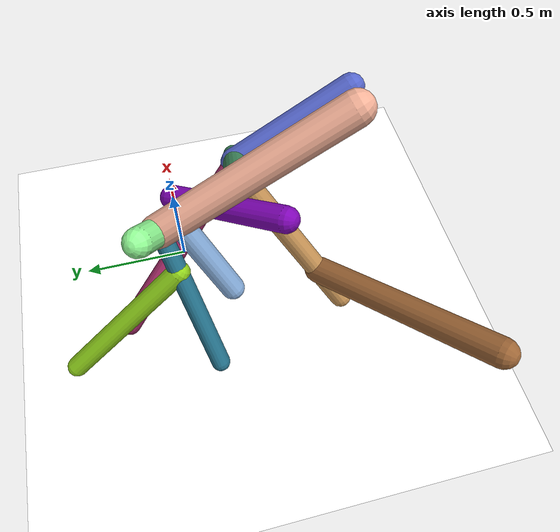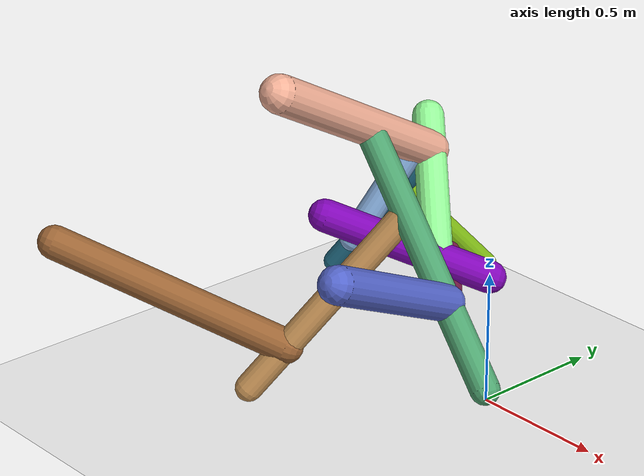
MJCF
<mujoco model="morphology">
  <option timestep="0.01"/>
  <default>
    <default class="/"/>
    <default class="0/"/>
    <default class="0/1/"/>
    <default class="0/1/2/"/>
    <default class="0/1/2/3/"/>
    <default class="0/1/2/3/4/"/>
    <default class="0/1/2/3/5/"/>
    <default class="0/1/2/3/6/"/>
    <default class="0/1/2/3/6/7/"/>
    <default class="0/1/2/8/"/>
    <default class="0/1/9/"/>
    <default class="0/1/9/10/"/>
  </default>
  <asset>
    <texture name="texplane" type="2d" builtin="checker" rgb1="0.10000000000000001 0.20000000000000001 0.29999999999999999" rgb2="0.20000000000000001 0.29999999999999999 0.40000000000000002" width="300" height="300"/>
    <material name="MatPlane" class="/" texture="texplane" texrepeat="20 20" specular="1" shininess="1" reflectance="0.5"/>
  </asset>
  <worldbody>
    <light name="//unnamed_light_0" class="/" directional="true" pos="0 0 1.5" dir="0 0 -1.3" cutoff="100" exponent="1" diffuse="1 1 1" specular="0.10000000000000001 0.10000000000000001 0.10000000000000001"/>
    <geom name="ground" class="/" type="plane" size="15 15 0.5" material="MatPlane" rgba="1 1 1 1"/>
    <site name="body" class="/" size="9.9999999999999995e-07 9.9999999999999995e-07 9.9999999999999995e-07" pos="0 0 0.48949972391128538"/>
    <body pos="0 0 0.48949972391128538" name="0/">
      <freejoint name="0/"/>
      <geom name="0/geom" class="0/" type="capsule" contype="1" conaffinity="1" condim="3" size="0.05854870341372781" rgba="0.49829781251929883 0.019619545983344699 0.71216190238826449 1" friction="0.59999999999999998 0.10000000000000001 0.10000000000000001" fromto="0 0 0 -0.39004625765282203 -0.42642196854263203 0.23197499242318798"/>
      <site name="0/end0" class="0/" size="0.0050000000000000001" pos="-0.39004625765282203 -0.42642196854263203 0.23197499242318798"/>
      <site name="0/attach1" class="0/" size="9.9999999999999995e-07 9.9999999999999995e-07 9.9999999999999995e-07" pos="-0.12656644392730831 -0.1383700294824069 0.07527376380367834"/>
      <body pos="-0.12656644392730831 -0.1383700294824069 0.07527376380367834" name="0/1/">
        <joint name="0/1/joint/" class="0/" type="hinge" axis="0 1 0" limited="true" range="-55.637896106594326 55.637896106594326"/>
        <geom name="0/1/geom" class="0/1/" type="capsule" contype="1" conaffinity="1" condim="3" size="0.058537656563158028" rgba="0.57928709458865357 0.99422849089381071 0.59038317302543764 1" friction="0.59999999999999998 0.10000000000000001 0.10000000000000001" fromto="0 0 0 -0.3545772185767509 0.28871148945027314 0.34765611115921535"/>
        <site name="0/1/end1" class="0/1/" size="0.0050000000000000001" pos="-0.3545772185767509 0.28871148945027314 0.34765611115921535"/>
        <site name="0/1/attach2" class="0/1/" size="9.9999999999999995e-07 9.9999999999999995e-07 9.9999999999999995e-07" pos="-0.26924405774158183 0.21922968781870952 0.2639885958914312"/>
        <body pos="-0.26924405774158183 0.21922968781870952 0.2639885958914312" name="0/1/2/">
          <joint name="0/1/2/joint/" class="0/1/" type="hinge" axis="0 -0.76931055926097414 0.63887499826614502" limited="true" range="-34.362042394383401 34.362042394383401"/>
          <geom name="0/1/2/geom" class="0/1/2/" type="capsule" contype="1" conaffinity="1" condim="3" size="0.068566621146635962" rgba="0.94462228464117837 0.68625734506372871 0.587342943489921 1" friction="0.59999999999999998 0.10000000000000001 0.10000000000000001" fromto="0 0 0 0.050374838727390014 -0.74702588649131774 0.41858569937759271"/>
          <site name="0/1/2/end2" class="0/1/2/" size="0.0050000000000000001" pos="0.050374838727390014 -0.74702588649131774 0.41858569937759271"/>
          <site name="0/1/2/attach3" class="0/1/2/" size="9.9999999999999995e-07 9.9999999999999995e-07 9.9999999999999995e-07" pos="0.021678322858431902 -0.32147533888103297 0.18013429252124019"/>
          <body pos="0.021678322858431902 -0.32147533888103297 0.18013429252124019" name="0/1/2/3/">
            <joint name="0/1/2/3/joint/" class="0/1/2/" type="hinge" axis="0.99827411079242023 0.051231863048502968 -0.028707071083304253" limited="true" range="-54.038777688252743 54.038777688252743"/>
            <geom name="0/1/2/3/geom" class="0/1/2/3/" type="capsule" contype="1" conaffinity="1" condim="3" size="0.052686643428508984" rgba="0.30533136551422901 0.63836001117725627 0.43532457454190443 1" friction="0.59999999999999998 0.10000000000000001 0.10000000000000001" fromto="0 0 0 0.71075612197182125 -0.11101662108597377 -0.70647567725369009"/>
            <site name="0/1/2/3/end3" class="0/1/2/3/" size="0.0050000000000000001" pos="0.71075612197182125 -0.11101662108597377 -0.70647567725369009"/>
            <site name="0/1/2/3/attach4" class="0/1/2/3/" size="9.9999999999999995e-07 9.9999999999999995e-07 9.9999999999999995e-07" pos="0.4998559429788364 -0.078075047268398548 -0.49684561965581753"/>
            <body pos="0.4998559429788364 -0.078075047268398548 -0.49684561965581753" name="0/1/2/3/4/">
              <geom name="0/1/2/3/4/geom" class="0/1/2/3/4/" type="capsule" contype="1" conaffinity="1" condim="3" size="0.045894580544411694" rgba="0.55400604449186797 0.13625937996972726 0.34665505450452161 1" friction="0.59999999999999998 0.10000000000000001 0.10000000000000001" fromto="0 0 0 -0.62583901839711464 0.60570275086465242 -0.1914664912317644"/>
              <site name="0/1/2/3/4/end4" class="0/1/2/3/4/" size="0.0050000000000000001" pos="-0.62583901839711464 0.60570275086465242 -0.1914664912317644"/>
            </body>
            <site name="0/1/2/3/attach5" class="0/1/2/3/" size="9.9999999999999995e-07 9.9999999999999995e-07 9.9999999999999995e-07" pos="0.48013666498330498 -0.074994992738237662 -0.47724509868077741"/>
            <body pos="0.48013666498330498 -0.074994992738237662 -0.47724509868077741" name="0/1/2/3/5/">
              <joint name="0/1/2/3/5/joint/" class="0/1/2/3/" type="hinge" axis="0.70927994291833674 0.10943038033253011 0.69638132832094146" limited="true" range="-41.875312085218077 41.875312085218077"/>
              <geom name="0/1/2/3/5/geom" class="0/1/2/3/5/" type="capsule" contype="1" conaffinity="1" condim="3" size="0.065488809956186389" rgba="0.33341274115894992 0.4000898044921084 0.7952696266639816 1" friction="0.59999999999999998 0.10000000000000001 0.10000000000000001" fromto="0 0 0 0.075618540335549378 -0.56317811861364508 0.27438949686591863"/>
              <site name="0/1/2/3/5/end5" class="0/1/2/3/5/" size="0.0050000000000000001" pos="0.075618540335549378 -0.56317811861364508 0.27438949686591863"/>
            </body>
            <site name="0/1/2/3/attach6" class="0/1/2/3/" size="9.9999999999999995e-07 9.9999999999999995e-07 9.9999999999999995e-07" pos="0.23864621226170057 -0.037275368162513631 -0.23720899366139692"/>
            <body pos="0.23864621226170057 -0.037275368162513631 -0.23720899366139692" name="0/1/2/3/6/">
              <joint name="0/1/2/3/6/joint/" class="0/1/2/3/" type="hinge" axis="0.70927994291833674 0.10943038033253011 0.69638132832094146" limited="true" range="-41.126090379616045 41.126090379616045"/>
              <geom name="0/1/2/3/6/geom" class="0/1/2/3/6/" type="capsule" contype="1" conaffinity="1" condim="3" size="0.050269777569686043" rgba="0.79656028013356628 0.59282922006535166 0.34798098055145199 1" friction="0.59999999999999998 0.10000000000000001 0.10000000000000001" fromto="0 0 0 -0.35508221995896638 -0.41745995473190345 -0.67168737326124583"/>
              <site name="0/1/2/3/6/end6" class="0/1/2/3/6/" size="0.0050000000000000001" pos="-0.35508221995896638 -0.41745995473190345 -0.67168737326124583"/>
              <site name="0/1/2/3/6/attach7" class="0/1/2/3/6/" size="9.9999999999999995e-07 9.9999999999999995e-07 9.9999999999999995e-07" pos="-0.26886416369935773 -0.31609586540248485 -0.50859393607534797"/>
              <body pos="-0.26886416369935773 -0.31609586540248485 -0.50859393607534797" name="0/1/2/3/6/7/">
                <joint name="0/1/2/3/6/7/joint/" class="0/1/2/3/6/" type="hinge" axis="0 -0.84932809259687003 0.52786531532746361" limited="true" range="-42.26282988071091 42.26282988071091"/>
                <geom name="0/1/2/3/6/7/geom" class="0/1/2/3/6/7/" type="capsule" contype="1" conaffinity="1" condim="3" size="0.062195540139090594" rgba="0.61092670517709535 0.39528332920438913 0.21086774981533785 1" friction="0.59999999999999998 0.10000000000000001 0.10000000000000001" fromto="0 0 0 -0.67224084343319235 -0.49468115576175448 0.31971374694226418"/>
                <site name="0/1/2/3/6/7/end7" class="0/1/2/3/6/7/" size="0.0050000000000000001" pos="-0.67224084343319235 -0.49468115576175448 0.31971374694226418"/>
              </body>
            </body>
          </body>
          <site name="0/1/2/attach8" class="0/1/2/" size="9.9999999999999995e-07 9.9999999999999995e-07 9.9999999999999995e-07" pos="0.0053350160097100363 -0.079114795496745827 0.044330889468454135"/>
          <body pos="0.0053350160097100363 -0.079114795496745827 0.044330889468454135" name="0/1/2/8/">
            <joint name="0/1/2/8/joint/" class="0/1/2/" type="hinge" axis="0.99827411079242023 0.051231863048502968 -0.028707071083304253" limited="true" range="-48.566486206218663 48.566486206218663"/>
            <geom name="0/1/2/8/geom" class="0/1/2/8/" type="capsule" contype="1" conaffinity="1" condim="3" size="0.049126681107871828" rgba="0.55528704431696951 0.71662941725214135 0.90617125530276144 1" friction="0.59999999999999998 0.10000000000000001 0.10000000000000001" fromto="0 0 0 -0.13818896497076538 -0.16985282288769454 -0.36398900552213892"/>
            <site name="0/1/2/8/end8" class="0/1/2/8/" size="0.0050000000000000001" pos="-0.13818896497076538 -0.16985282288769454 -0.36398900552213892"/>
          </body>
        </body>
        <site name="0/1/attach9" class="0/1/" size="9.9999999999999995e-07 9.9999999999999995e-07 9.9999999999999995e-07" pos="-0.25867168835701193 0.21062122581912132 0.25362259200451559"/>
        <body pos="-0.25867168835701193 0.21062122581912132 0.25362259200451559" name="0/1/9/">
          <geom name="0/1/9/geom" class="0/1/9/" type="capsule" contype="1" conaffinity="1" condim="3" size="0.039075619840312548" rgba="0.14991823920625735 0.46448227073010273 0.56902787328492765 1" friction="0.59999999999999998 0.10000000000000001 0.10000000000000001" fromto="0 0 0 -0.36791464520605532 -0.13208334870675187 -0.51355088609433608"/>
          <site name="0/1/9/end9" class="0/1/9/" size="0.0050000000000000001" pos="-0.36791464520605532 -0.13208334870675187 -0.51355088609433608"/>
          <site name="0/1/9/attach10" class="0/1/9/" size="9.9999999999999995e-07 9.9999999999999995e-07 9.9999999999999995e-07" pos="-0.10878039148630761 -0.039052749240509096 -0.1518402900384532"/>
          <body pos="-0.10878039148630761 -0.039052749240509096 -0.1518402900384532" name="0/1/9/10/">
            <geom name="0/1/9/10/geom" class="0/1/9/10/" type="capsule" contype="1" conaffinity="1" condim="3" size="0.045505031975549129" rgba="0.57353872588896437 0.83067910702453518 0.11136113574788264 1" friction="0.59999999999999998 0.10000000000000001 0.10000000000000001" fromto="0 0 0 -0.074604259371398474 0.52272059235198487 -0.50319739311991918"/>
            <site name="0/1/9/10/end10" class="0/1/9/10/" size="0.0050000000000000001" pos="-0.074604259371398474 0.52272059235198487 -0.50319739311991918"/>
          </body>
        </body>
      </body>
      <camera name="0/iso" class="0/" mode="trackcom" pos="-2.2999999999999998 -2.2999999999999998 1" xyaxes="0.45000000000000001 -0.45000000000000001 0 0.29999999999999999 0.14999999999999999 0.93999999999999995"/>
    </body>
  </worldbody>
  <actuator>
    <motor name="0/1/motor" class="0/1/" ctrllimited="true" ctrlrange="-1 1" gear="69" joint="0/1/joint/"/>
    <motor name="0/1/2/motor" class="0/1/2/" ctrllimited="true" ctrlrange="-1 1" gear="53" joint="0/1/2/joint/"/>
    <motor name="0/1/2/3/motor" class="0/1/2/3/" ctrllimited="true" ctrlrange="-1 1" gear="73" joint="0/1/2/3/joint/"/>
    <motor name="0/1/2/3/5/motor" class="0/1/2/3/5/" ctrllimited="true" ctrlrange="-1 1" gear="93" joint="0/1/2/3/5/joint/"/>
    <motor name="0/1/2/3/6/motor" class="0/1/2/3/6/" ctrllimited="true" ctrlrange="-1 1" gear="98" joint="0/1/2/3/6/joint/"/>
    <motor name="0/1/2/3/6/7/motor" class="0/1/2/3/6/7/" ctrllimited="true" ctrlrange="-1 1" gear="75" joint="0/1/2/3/6/7/joint/"/>
    <motor name="0/1/2/8/motor" class="0/1/2/8/" ctrllimited="true" ctrlrange="-1 1" gear="90" joint="0/1/2/8/joint/"/>
  </actuator>
  <sensor>
    <subtreelinvel name="velocity" body="0/"/>
  </sensor>
</mujoco>
